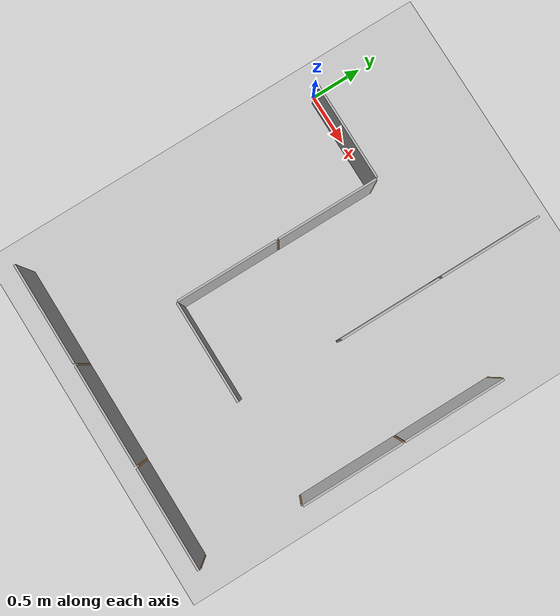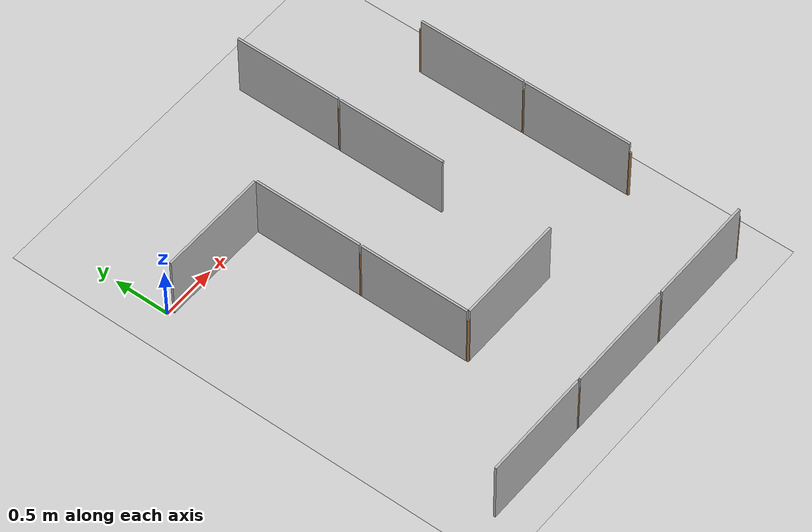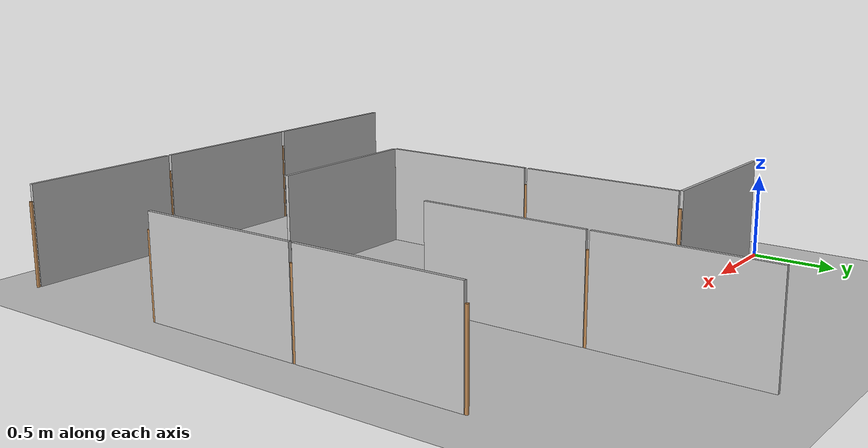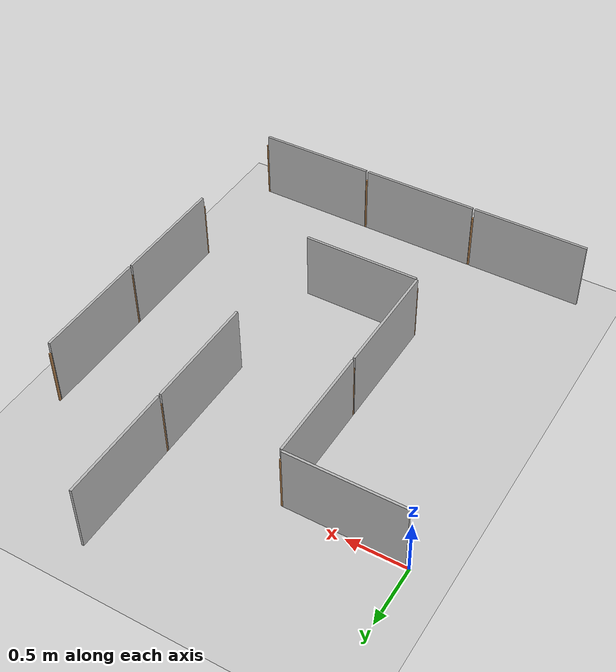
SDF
<sdf version="1.7">
 <world name="default">
  <model name="ground_plane">
   <static>1</static>
   <link name="link">
    <collision name="collision">
     <geometry><plane><normal>0 0 1</normal><size>100 100</size></plane></geometry>
     <surface><friction><ode><mu>100</mu><mu2>50</mu2></ode></friction></surface>
    </collision>
    <visual name="visual">
     <cast_shadows>0</cast_shadows>
     <geometry><plane><normal>0 0 1</normal><size>100 100</size></plane></geometry>
     <material>
      <script><uri>file://media/materials/scripts/gazebo.material</uri><name>Gazebo/Grey</name></script>
     </material>
    </visual>
   </link>
  </model>
  <model name="maze_3_6x6">
   <link name="plywood_panel_0_3_a::main">
    <pose>0 3 0 0 -0 3.14159</pose>
    <visual name="visual">
     <pose>0.01 -0.01 0 3.14159 -1.57059 3.14159</pose>
     <geometry><mesh><scale>1 1 1</scale><uri>model://plywood_panel/meshes/plywood.dae</uri></mesh></geometry>
     <material><shader type="pixel"/></material>
    </visual>
    <collision name="collision">
     <pose>0 -0.5 0.3 -1.571 -0 -1.571</pose>
     <geometry><box><size>0.98 0.6 0.02</size></box></geometry>
     <surface>
      <friction>
       <ode><mu>1</mu><mu2>1</mu2><fdir1>0 0 0</fdir1><slip1>0</slip1><slip2>0</slip2></ode>
       <torsional>
        <coefficient>1</coefficient>
        <patch_radius>0</patch_radius>
        <surface_radius>0</surface_radius>
        <use_patch_radius>1</use_patch_radius>
        <ode><slip>0</slip></ode>
       </torsional>
      </friction>
      <bounce><restitution_coefficient>0</restitution_coefficient><threshold>1e+06</threshold></bounce>
      <contact>
       <collide_without_contact>0</collide_without_contact>
       <collide_without_contact_bitmask>1</collide_without_contact_bitmask>
       <collide_bitmask>1</collide_bitmask>
       <ode>
        <soft_cfm>0</soft_cfm>
        <soft_erp>0.2</soft_erp>
        <kp>1e+13</kp>
        <kd>1</kd>
        <max_vel>0.01</max_vel>
        <min_depth>0</min_depth>
       </ode>
       <bullet>
        <split_impulse>1</split_impulse>
        <split_impulse_penetration_threshold>-0.01</split_impulse_penetration_threshold>
        <soft_cfm>0</soft_cfm>
        <soft_erp>0.2</soft_erp>
        <kp>1e+13</kp>
        <kd>1</kd>
       </bullet>
      </contact>
     </surface>
    </collision>
   </link>
   <link name="plywood_panel_0_4_a::main">
    <pose>0 4 0 0 -0 3.14159</pose>
    <visual name="visual">
     <pose>0.01 -0.01 0 3.14159 -1.57059 3.14159</pose>
     <geometry><mesh><scale>1 1 1</scale><uri>model://plywood_panel/meshes/plywood.dae</uri></mesh></geometry>
     <material><shader type="pixel"/></material>
    </visual>
    <collision name="collision">
     <pose>0 -0.5 0.3 -1.571 -0 -1.571</pose>
     <geometry><box><size>0.98 0.6 0.02</size></box></geometry>
     <surface>
      <friction>
       <ode><mu>1</mu><mu2>1</mu2><fdir1>0 0 0</fdir1><slip1>0</slip1><slip2>0</slip2></ode>
       <torsional>
        <coefficient>1</coefficient>
        <patch_radius>0</patch_radius>
        <surface_radius>0</surface_radius>
        <use_patch_radius>1</use_patch_radius>
        <ode><slip>0</slip></ode>
       </torsional>
      </friction>
      <bounce><restitution_coefficient>0</restitution_coefficient><threshold>1e+06</threshold></bounce>
      <contact>
       <collide_without_contact>0</collide_without_contact>
       <collide_without_contact_bitmask>1</collide_without_contact_bitmask>
       <collide_bitmask>1</collide_bitmask>
       <ode>
        <soft_cfm>0</soft_cfm>
        <soft_erp>0.2</soft_erp>
        <kp>1e+13</kp>
        <kd>1</kd>
        <max_vel>0.01</max_vel>
        <min_depth>0</min_depth>
       </ode>
       <bullet>
        <split_impulse>1</split_impulse>
        <split_impulse_penetration_threshold>-0.01</split_impulse_penetration_threshold>
        <soft_cfm>0</soft_cfm>
        <soft_erp>0.2</soft_erp>
        <kp>1e+13</kp>
        <kd>1</kd>
       </bullet>
      </contact>
     </surface>
    </collision>
   </link>
   <link name="plywood_panel_0_6_b::main">
    <pose>0 6 0 0 -0 1.571</pose>
    <visual name="visual">
     <pose>0.01 -0.01 0 3.14159 -1.57059 3.14159</pose>
     <geometry><mesh><scale>1 1 1</scale><uri>model://plywood_panel/meshes/plywood.dae</uri></mesh></geometry>
     <material><shader type="pixel"/></material>
    </visual>
    <collision name="collision">
     <pose>0 -0.5 0.3 -1.571 -0 -1.571</pose>
     <geometry><box><size>0.98 0.6 0.02</size></box></geometry>
     <surface>
      <friction>
       <ode><mu>1</mu><mu2>1</mu2><fdir1>0 0 0</fdir1><slip1>0</slip1><slip2>0</slip2></ode>
       <torsional>
        <coefficient>1</coefficient>
        <patch_radius>0</patch_radius>
        <surface_radius>0</surface_radius>
        <use_patch_radius>1</use_patch_radius>
        <ode><slip>0</slip></ode>
       </torsional>
      </friction>
      <bounce><restitution_coefficient>0</restitution_coefficient><threshold>1e+06</threshold></bounce>
      <contact>
       <collide_without_contact>0</collide_without_contact>
       <collide_without_contact_bitmask>1</collide_without_contact_bitmask>
       <collide_bitmask>1</collide_bitmask>
       <ode>
        <soft_cfm>0</soft_cfm>
        <soft_erp>0.2</soft_erp>
        <kp>1e+13</kp>
        <kd>1</kd>
        <max_vel>0.01</max_vel>
        <min_depth>0</min_depth>
       </ode>
       <bullet>
        <split_impulse>1</split_impulse>
        <split_impulse_penetration_threshold>-0.01</split_impulse_penetration_threshold>
        <soft_cfm>0</soft_cfm>
        <soft_erp>0.2</soft_erp>
        <kp>1e+13</kp>
        <kd>1</kd>
       </bullet>
      </contact>
     </surface>
    </collision>
   </link>
   <link name="plywood_panel_1_3_a::main">
    <pose>1 3 0 0 -0 0</pose>
    <visual name="visual">
     <pose>0.01 -0.01 0 3.14159 -1.57059 3.14159</pose>
     <geometry><mesh><scale>1 1 1</scale><uri>model://plywood_panel/meshes/plywood.dae</uri></mesh></geometry>
     <material><shader type="pixel"/></material>
    </visual>
    <collision name="collision">
     <pose>0 -0.5 0.3 -1.571 -0 -1.571</pose>
     <geometry><box><size>0.98 0.6 0.02</size></box></geometry>
     <surface>
      <friction>
       <ode><mu>1</mu><mu2>1</mu2><fdir1>0 0 0</fdir1><slip1>0</slip1><slip2>0</slip2></ode>
       <torsional>
        <coefficient>1</coefficient>
        <patch_radius>0</patch_radius>
        <surface_radius>0</surface_radius>
        <use_patch_radius>1</use_patch_radius>
        <ode><slip>0</slip></ode>
       </torsional>
      </friction>
      <bounce><restitution_coefficient>0</restitution_coefficient><threshold>1e+06</threshold></bounce>
      <contact>
       <collide_without_contact>0</collide_without_contact>
       <collide_without_contact_bitmask>1</collide_without_contact_bitmask>
       <collide_bitmask>1</collide_bitmask>
       <ode>
        <soft_cfm>0</soft_cfm>
        <soft_erp>0.2</soft_erp>
        <kp>1e+13</kp>
        <kd>1</kd>
        <max_vel>0.01</max_vel>
        <min_depth>0</min_depth>
       </ode>
       <bullet>
        <split_impulse>1</split_impulse>
        <split_impulse_penetration_threshold>-0.01</split_impulse_penetration_threshold>
        <soft_cfm>0</soft_cfm>
        <soft_erp>0.2</soft_erp>
        <kp>1e+13</kp>
        <kd>1</kd>
       </bullet>
      </contact>
     </surface>
    </collision>
   </link>
   <link name="plywood_panel_1_4_a::main">
    <pose>1 4 0 0 -0 0</pose>
    <visual name="visual">
     <pose>0.01 -0.01 0 3.14159 -1.57059 3.14159</pose>
     <geometry><mesh><scale>1 1 1</scale><uri>model://plywood_panel/meshes/plywood.dae</uri></mesh></geometry>
     <material><shader type="pixel"/></material>
    </visual>
    <collision name="collision">
     <pose>0 -0.5 0.3 -1.571 -0 -1.571</pose>
     <geometry><box><size>0.98 0.6 0.02</size></box></geometry>
     <surface>
      <friction>
       <ode><mu>1</mu><mu2>1</mu2><fdir1>0 0 0</fdir1><slip1>0</slip1><slip2>0</slip2></ode>
       <torsional>
        <coefficient>1</coefficient>
        <patch_radius>0</patch_radius>
        <surface_radius>0</surface_radius>
        <use_patch_radius>1</use_patch_radius>
        <ode><slip>0</slip></ode>
       </torsional>
      </friction>
      <bounce><restitution_coefficient>0</restitution_coefficient><threshold>1e+06</threshold></bounce>
      <contact>
       <collide_without_contact>0</collide_without_contact>
       <collide_without_contact_bitmask>1</collide_without_contact_bitmask>
       <collide_bitmask>1</collide_bitmask>
       <ode>
        <soft_cfm>0</soft_cfm>
        <soft_erp>0.2</soft_erp>
        <kp>1e+13</kp>
        <kd>1</kd>
        <max_vel>0.01</max_vel>
        <min_depth>0</min_depth>
       </ode>
       <bullet>
        <split_impulse>1</split_impulse>
        <split_impulse_penetration_threshold>-0.01</split_impulse_penetration_threshold>
        <soft_cfm>0</soft_cfm>
        <soft_erp>0.2</soft_erp>
        <kp>1e+13</kp>
        <kd>1</kd>
       </bullet>
      </contact>
     </surface>
    </collision>
   </link>
   <link name="plywood_panel_1_6_b::main">
    <pose>1 6 0 0 -0 1.571</pose>
    <visual name="visual">
     <pose>0.01 -0.01 0 3.14159 -1.57059 3.14159</pose>
     <geometry><mesh><scale>1 1 1</scale><uri>model://plywood_panel/meshes/plywood.dae</uri></mesh></geometry>
     <material><shader type="pixel"/></material>
    </visual>
    <collision name="collision">
     <pose>0 -0.5 0.3 -1.571 -0 -1.571</pose>
     <geometry><box><size>0.98 0.6 0.02</size></box></geometry>
     <surface>
      <friction>
       <ode><mu>1</mu><mu2>1</mu2><fdir1>0 0 0</fdir1><slip1>0</slip1><slip2>0</slip2></ode>
       <torsional>
        <coefficient>1</coefficient>
        <patch_radius>0</patch_radius>
        <surface_radius>0</surface_radius>
        <use_patch_radius>1</use_patch_radius>
        <ode><slip>0</slip></ode>
       </torsional>
      </friction>
      <bounce><restitution_coefficient>0</restitution_coefficient><threshold>1e+06</threshold></bounce>
      <contact>
       <collide_without_contact>0</collide_without_contact>
       <collide_without_contact_bitmask>1</collide_without_contact_bitmask>
       <collide_bitmask>1</collide_bitmask>
       <ode>
        <soft_cfm>0</soft_cfm>
        <soft_erp>0.2</soft_erp>
        <kp>1e+13</kp>
        <kd>1</kd>
        <max_vel>0.01</max_vel>
        <min_depth>0</min_depth>
       </ode>
       <bullet>
        <split_impulse>1</split_impulse>
        <split_impulse_penetration_threshold>-0.01</split_impulse_penetration_threshold>
        <soft_cfm>0</soft_cfm>
        <soft_erp>0.2</soft_erp>
        <kp>1e+13</kp>
        <kd>1</kd>
       </bullet>
      </contact>
     </surface>
    </collision>
   </link>
   <link name="plywood_panel_2_4_a::main">
    <pose>2 4 0 0 -0 0</pose>
    <visual name="visual">
     <pose>0.01 -0.01 0 3.14159 -1.57059 3.14159</pose>
     <geometry><mesh><scale>1 1 1</scale><uri>model://plywood_panel/meshes/plywood.dae</uri></mesh></geometry>
     <material><shader type="pixel"/></material>
    </visual>
    <collision name="collision">
     <pose>0 -0.5 0.3 -1.571 -0 -1.571</pose>
     <geometry><box><size>0.98 0.6 0.02</size></box></geometry>
     <surface>
      <friction>
       <ode><mu>1</mu><mu2>1</mu2><fdir1>0 0 0</fdir1><slip1>0</slip1><slip2>0</slip2></ode>
       <torsional>
        <coefficient>1</coefficient>
        <patch_radius>0</patch_radius>
        <surface_radius>0</surface_radius>
        <use_patch_radius>1</use_patch_radius>
        <ode><slip>0</slip></ode>
       </torsional>
      </friction>
      <bounce><restitution_coefficient>0</restitution_coefficient><threshold>1e+06</threshold></bounce>
      <contact>
       <collide_without_contact>0</collide_without_contact>
       <collide_without_contact_bitmask>1</collide_without_contact_bitmask>
       <collide_bitmask>1</collide_bitmask>
       <ode>
        <soft_cfm>0</soft_cfm>
        <soft_erp>0.2</soft_erp>
        <kp>1e+13</kp>
        <kd>1</kd>
        <max_vel>0.01</max_vel>
        <min_depth>0</min_depth>
       </ode>
       <bullet>
        <split_impulse>1</split_impulse>
        <split_impulse_penetration_threshold>-0.01</split_impulse_penetration_threshold>
        <soft_cfm>0</soft_cfm>
        <soft_erp>0.2</soft_erp>
        <kp>1e+13</kp>
        <kd>1</kd>
       </bullet>
      </contact>
     </surface>
    </collision>
   </link>
   <link name="plywood_panel_2_5_a::main">
    <pose>2 5 0 0 -0 0</pose>
    <visual name="visual">
     <pose>0.01 -0.01 0 3.14159 -1.57059 3.14159</pose>
     <geometry><mesh><scale>1 1 1</scale><uri>model://plywood_panel/meshes/plywood.dae</uri></mesh></geometry>
     <material><shader type="pixel"/></material>
    </visual>
    <collision name="collision">
     <pose>0 -0.5 0.3 -1.571 -0 -1.571</pose>
     <geometry><box><size>0.98 0.6 0.02</size></box></geometry>
     <surface>
      <friction>
       <ode><mu>1</mu><mu2>1</mu2><fdir1>0 0 0</fdir1><slip1>0</slip1><slip2>0</slip2></ode>
       <torsional>
        <coefficient>1</coefficient>
        <patch_radius>0</patch_radius>
        <surface_radius>0</surface_radius>
        <use_patch_radius>1</use_patch_radius>
        <ode><slip>0</slip></ode>
       </torsional>
      </friction>
      <bounce><restitution_coefficient>0</restitution_coefficient><threshold>1e+06</threshold></bounce>
      <contact>
       <collide_without_contact>0</collide_without_contact>
       <collide_without_contact_bitmask>1</collide_without_contact_bitmask>
       <collide_bitmask>1</collide_bitmask>
       <ode>
        <soft_cfm>0</soft_cfm>
        <soft_erp>0.2</soft_erp>
        <kp>1e+13</kp>
        <kd>1</kd>
        <max_vel>0.01</max_vel>
        <min_depth>0</min_depth>
       </ode>
       <bullet>
        <split_impulse>1</split_impulse>
        <split_impulse_penetration_threshold>-0.01</split_impulse_penetration_threshold>
        <soft_cfm>0</soft_cfm>
        <soft_erp>0.2</soft_erp>
        <kp>1e+13</kp>
        <kd>1</kd>
       </bullet>
      </contact>
     </surface>
    </collision>
   </link>
   <link name="plywood_panel_2_5_c::main">
    <pose>2 5 0 0 0 -1.5708</pose>
    <visual name="visual">
     <pose>0.01 -0.01 0 3.14159 -1.57059 3.14159</pose>
     <geometry><mesh><scale>1 1 1</scale><uri>model://plywood_panel/meshes/plywood.dae</uri></mesh></geometry>
     <material><shader type="pixel"/></material>
    </visual>
    <collision name="collision">
     <pose>0 -0.5 0.3 -1.571 -0 -1.571</pose>
     <geometry><box><size>0.98 0.6 0.02</size></box></geometry>
     <surface>
      <friction>
       <ode><mu>1</mu><mu2>1</mu2><fdir1>0 0 0</fdir1><slip1>0</slip1><slip2>0</slip2></ode>
       <torsional>
        <coefficient>1</coefficient>
        <patch_radius>0</patch_radius>
        <surface_radius>0</surface_radius>
        <use_patch_radius>1</use_patch_radius>
        <ode><slip>0</slip></ode>
       </torsional>
      </friction>
      <bounce><restitution_coefficient>0</restitution_coefficient><threshold>1e+06</threshold></bounce>
      <contact>
       <collide_without_contact>0</collide_without_contact>
       <collide_without_contact_bitmask>1</collide_without_contact_bitmask>
       <collide_bitmask>1</collide_bitmask>
       <ode>
        <soft_cfm>0</soft_cfm>
        <soft_erp>0.2</soft_erp>
        <kp>1e+13</kp>
        <kd>1</kd>
        <max_vel>0.01</max_vel>
        <min_depth>0</min_depth>
       </ode>
       <bullet>
        <split_impulse>1</split_impulse>
        <split_impulse_penetration_threshold>-0.01</split_impulse_penetration_threshold>
        <soft_cfm>0</soft_cfm>
        <soft_erp>0.2</soft_erp>
        <kp>1e+13</kp>
        <kd>1</kd>
       </bullet>
      </contact>
     </surface>
    </collision>
   </link>
   <link name="plywood_panel_2_6_b::main">
    <pose>2 6 0 0 -0 1.571</pose>
    <visual name="visual">
     <pose>0.01 -0.01 0 3.14159 -1.57059 3.14159</pose>
     <geometry><mesh><scale>1 1 1</scale><uri>model://plywood_panel/meshes/plywood.dae</uri></mesh></geometry>
     <material><shader type="pixel"/></material>
    </visual>
    <collision name="collision">
     <pose>0 -0.5 0.3 -1.571 -0 -1.571</pose>
     <geometry><box><size>0.98 0.6 0.02</size></box></geometry>
     <surface>
      <friction>
       <ode><mu>1</mu><mu2>1</mu2><fdir1>0 0 0</fdir1><slip1>0</slip1><slip2>0</slip2></ode>
       <torsional>
        <coefficient>1</coefficient>
        <patch_radius>0</patch_radius>
        <surface_radius>0</surface_radius>
        <use_patch_radius>1</use_patch_radius>
        <ode><slip>0</slip></ode>
       </torsional>
      </friction>
      <bounce><restitution_coefficient>0</restitution_coefficient><threshold>1e+06</threshold></bounce>
      <contact>
       <collide_without_contact>0</collide_without_contact>
       <collide_without_contact_bitmask>1</collide_without_contact_bitmask>
       <collide_bitmask>1</collide_bitmask>
       <ode>
        <soft_cfm>0</soft_cfm>
        <soft_erp>0.2</soft_erp>
        <kp>1e+13</kp>
        <kd>1</kd>
        <max_vel>0.01</max_vel>
        <min_depth>0</min_depth>
       </ode>
       <bullet>
        <split_impulse>1</split_impulse>
        <split_impulse_penetration_threshold>-0.01</split_impulse_penetration_threshold>
        <soft_cfm>0</soft_cfm>
        <soft_erp>0.2</soft_erp>
        <kp>1e+13</kp>
        <kd>1</kd>
       </bullet>
      </contact>
     </surface>
    </collision>
   </link>
   <link name="plywood_panel_3_3_c::main">
    <pose>3 3 0 0 0 -1.5708</pose>
    <visual name="visual">
     <pose>0.01 -0.01 0 3.14159 -1.57059 3.14159</pose>
     <geometry><mesh><scale>1 1 1</scale><uri>model://plywood_panel/meshes/plywood.dae</uri></mesh></geometry>
     <material><shader type="pixel"/></material>
    </visual>
    <collision name="collision">
     <pose>0 -0.5 0.3 -1.571 -0 -1.571</pose>
     <geometry><box><size>0.98 0.6 0.02</size></box></geometry>
     <surface>
      <friction>
       <ode><mu>1</mu><mu2>1</mu2><fdir1>0 0 0</fdir1><slip1>0</slip1><slip2>0</slip2></ode>
       <torsional>
        <coefficient>1</coefficient>
        <patch_radius>0</patch_radius>
        <surface_radius>0</surface_radius>
        <use_patch_radius>1</use_patch_radius>
        <ode><slip>0</slip></ode>
       </torsional>
      </friction>
      <bounce><restitution_coefficient>0</restitution_coefficient><threshold>1e+06</threshold></bounce>
      <contact>
       <collide_without_contact>0</collide_without_contact>
       <collide_without_contact_bitmask>1</collide_without_contact_bitmask>
       <collide_bitmask>1</collide_bitmask>
       <ode>
        <soft_cfm>0</soft_cfm>
        <soft_erp>0.2</soft_erp>
        <kp>1e+13</kp>
        <kd>1</kd>
        <max_vel>0.01</max_vel>
        <min_depth>0</min_depth>
       </ode>
       <bullet>
        <split_impulse>1</split_impulse>
        <split_impulse_penetration_threshold>-0.01</split_impulse_penetration_threshold>
        <soft_cfm>0</soft_cfm>
        <soft_erp>0.2</soft_erp>
        <kp>1e+13</kp>
        <kd>1</kd>
       </bullet>
      </contact>
     </surface>
    </collision>
   </link>
   <link name="wooden_joint_0_3_a::link_0">
    <pose>0 3 0.25 0 -0 0</pose>
    <inertial>
     <mass>0.00215981</mass>
     <inertia>
      <ixx>0.00018028</ixx>
      <ixy>0</ixy>
      <ixz>0</ixz>
      <iyy>0.00018028</iyy>
      <iyz>0</iyz>
      <izz>5.8e-07</izz>
     </inertia>
    </inertial>
    <visual name="visual">
     <geometry><cylinder><radius>0.01</radius><length>0.5</length></cylinder></geometry>
     <material>
      <lighting>1</lighting>
      <script><uri>file://media/materials/scripts/gazebo.material</uri><name>Gazebo/Wood</name></script>
      <shader type="pixel"><normal_map>__default__</normal_map></shader>
      <ambient>0.3 0.3 0.3 1</ambient>
      <diffuse>0.7 0.7 0.7 1</diffuse>
      <specular>0.01 0.01 0.01 1</specular>
      <emissive>0 0 0 1</emissive>
     </material>
    </visual>
    <collision name="collision">
     <geometry><cylinder><radius>0.01</radius><length>0.5</length></cylinder></geometry>
     <surface>
      <friction>
       <ode><mu>1</mu><mu2>1</mu2><fdir1>0 0 0</fdir1><slip1>0</slip1><slip2>0</slip2></ode>
       <torsional>
        <coefficient>1</coefficient>
        <patch_radius>0</patch_radius>
        <surface_radius>0</surface_radius>
        <use_patch_radius>1</use_patch_radius>
        <ode><slip>0</slip></ode>
       </torsional>
      </friction>
      <bounce><restitution_coefficient>0</restitution_coefficient><threshold>1e+06</threshold></bounce>
      <contact>
       <collide_without_contact>0</collide_without_contact>
       <collide_without_contact_bitmask>1</collide_without_contact_bitmask>
       <collide_bitmask>1</collide_bitmask>
       <ode>
        <soft_cfm>0</soft_cfm>
        <soft_erp>0.2</soft_erp>
        <kp>1e+13</kp>
        <kd>1</kd>
        <max_vel>0.01</max_vel>
        <min_depth>0</min_depth>
       </ode>
       <bullet>
        <split_impulse>1</split_impulse>
        <split_impulse_penetration_threshold>-0.01</split_impulse_penetration_threshold>
        <soft_cfm>0</soft_cfm>
        <soft_erp>0.2</soft_erp>
        <kp>1e+13</kp>
        <kd>1</kd>
       </bullet>
      </contact>
     </surface>
    </collision>
   </link>
   <link name="wooden_joint_0_4_a::link_0">
    <pose>0 4 0.25 0 -0 0</pose>
    <inertial>
     <mass>0.00215981</mass>
     <inertia>
      <ixx>0.00018028</ixx>
      <ixy>0</ixy>
      <ixz>0</ixz>
      <iyy>0.00018028</iyy>
      <iyz>0</iyz>
      <izz>5.8e-07</izz>
     </inertia>
    </inertial>
    <visual name="visual">
     <geometry><cylinder><radius>0.01</radius><length>0.5</length></cylinder></geometry>
     <material>
      <lighting>1</lighting>
      <script><uri>file://media/materials/scripts/gazebo.material</uri><name>Gazebo/Wood</name></script>
      <shader type="pixel"><normal_map>__default__</normal_map></shader>
      <ambient>0.3 0.3 0.3 1</ambient>
      <diffuse>0.7 0.7 0.7 1</diffuse>
      <specular>0.01 0.01 0.01 1</specular>
      <emissive>0 0 0 1</emissive>
     </material>
    </visual>
    <collision name="collision">
     <geometry><cylinder><radius>0.01</radius><length>0.5</length></cylinder></geometry>
     <surface>
      <friction>
       <ode><mu>1</mu><mu2>1</mu2><fdir1>0 0 0</fdir1><slip1>0</slip1><slip2>0</slip2></ode>
       <torsional>
        <coefficient>1</coefficient>
        <patch_radius>0</patch_radius>
        <surface_radius>0</surface_radius>
        <use_patch_radius>1</use_patch_radius>
        <ode><slip>0</slip></ode>
       </torsional>
      </friction>
      <bounce><restitution_coefficient>0</restitution_coefficient><threshold>1e+06</threshold></bounce>
      <contact>
       <collide_without_contact>0</collide_without_contact>
       <collide_without_contact_bitmask>1</collide_without_contact_bitmask>
       <collide_bitmask>1</collide_bitmask>
       <ode>
        <soft_cfm>0</soft_cfm>
        <soft_erp>0.2</soft_erp>
        <kp>1e+13</kp>
        <kd>1</kd>
        <max_vel>0.01</max_vel>
        <min_depth>0</min_depth>
       </ode>
       <bullet>
        <split_impulse>1</split_impulse>
        <split_impulse_penetration_threshold>-0.01</split_impulse_penetration_threshold>
        <soft_cfm>0</soft_cfm>
        <soft_erp>0.2</soft_erp>
        <kp>1e+13</kp>
        <kd>1</kd>
       </bullet>
      </contact>
     </surface>
    </collision>
   </link>
   <link name="wooden_joint_0_5_a::link_0">
    <pose>0 5 0.25 0 -0 0</pose>
    <inertial>
     <mass>0.00215981</mass>
     <inertia>
      <ixx>0.00018028</ixx>
      <ixy>0</ixy>
      <ixz>0</ixz>
      <iyy>0.00018028</iyy>
      <iyz>0</iyz>
      <izz>5.8e-07</izz>
     </inertia>
    </inertial>
    <visual name="visual">
     <geometry><cylinder><radius>0.01</radius><length>0.5</length></cylinder></geometry>
     <material>
      <lighting>1</lighting>
      <script><uri>file://media/materials/scripts/gazebo.material</uri><name>Gazebo/Wood</name></script>
      <shader type="pixel"><normal_map>__default__</normal_map></shader>
      <ambient>0.3 0.3 0.3 1</ambient>
      <diffuse>0.7 0.7 0.7 1</diffuse>
      <specular>0.01 0.01 0.01 1</specular>
      <emissive>0 0 0 1</emissive>
     </material>
    </visual>
    <collision name="collision">
     <geometry><cylinder><radius>0.01</radius><length>0.5</length></cylinder></geometry>
     <surface>
      <friction>
       <ode><mu>1</mu><mu2>1</mu2><fdir1>0 0 0</fdir1><slip1>0</slip1><slip2>0</slip2></ode>
       <torsional>
        <coefficient>1</coefficient>
        <patch_radius>0</patch_radius>
        <surface_radius>0</surface_radius>
        <use_patch_radius>1</use_patch_radius>
        <ode><slip>0</slip></ode>
       </torsional>
      </friction>
      <bounce><restitution_coefficient>0</restitution_coefficient><threshold>1e+06</threshold></bounce>
      <contact>
       <collide_without_contact>0</collide_without_contact>
       <collide_without_contact_bitmask>1</collide_without_contact_bitmask>
       <collide_bitmask>1</collide_bitmask>
       <ode>
        <soft_cfm>0</soft_cfm>
        <soft_erp>0.2</soft_erp>
        <kp>1e+13</kp>
        <kd>1</kd>
        <max_vel>0.01</max_vel>
        <min_depth>0</min_depth>
       </ode>
       <bullet>
        <split_impulse>1</split_impulse>
        <split_impulse_penetration_threshold>-0.01</split_impulse_penetration_threshold>
        <soft_cfm>0</soft_cfm>
        <soft_erp>0.2</soft_erp>
        <kp>1e+13</kp>
        <kd>1</kd>
       </bullet>
      </contact>
     </surface>
    </collision>
   </link>
   <link name="wooden_joint_0_6_b::link_0">
    <pose>0 6 0.25 0 -0 0</pose>
    <inertial>
     <mass>0.00215981</mass>
     <inertia>
      <ixx>0.00018028</ixx>
      <ixy>0</ixy>
      <ixz>0</ixz>
      <iyy>0.00018028</iyy>
      <iyz>0</iyz>
      <izz>5.8e-07</izz>
     </inertia>
    </inertial>
    <visual name="visual">
     <geometry><cylinder><radius>0.01</radius><length>0.5</length></cylinder></geometry>
     <material>
      <lighting>1</lighting>
      <script><uri>file://media/materials/scripts/gazebo.material</uri><name>Gazebo/Wood</name></script>
      <shader type="pixel"><normal_map>__default__</normal_map></shader>
      <ambient>0.3 0.3 0.3 1</ambient>
      <diffuse>0.7 0.7 0.7 1</diffuse>
      <specular>0.01 0.01 0.01 1</specular>
      <emissive>0 0 0 1</emissive>
     </material>
    </visual>
    <collision name="collision">
     <geometry><cylinder><radius>0.01</radius><length>0.5</length></cylinder></geometry>
     <surface>
      <friction>
       <ode><mu>1</mu><mu2>1</mu2><fdir1>0 0 0</fdir1><slip1>0</slip1><slip2>0</slip2></ode>
       <torsional>
        <coefficient>1</coefficient>
        <patch_radius>0</patch_radius>
        <surface_radius>0</surface_radius>
        <use_patch_radius>1</use_patch_radius>
        <ode><slip>0</slip></ode>
       </torsional>
      </friction>
      <bounce><restitution_coefficient>0</restitution_coefficient><threshold>1e+06</threshold></bounce>
      <contact>
       <collide_without_contact>0</collide_without_contact>
       <collide_without_contact_bitmask>1</collide_without_contact_bitmask>
       <collide_bitmask>1</collide_bitmask>
       <ode>
        <soft_cfm>0</soft_cfm>
        <soft_erp>0.2</soft_erp>
        <kp>1e+13</kp>
        <kd>1</kd>
        <max_vel>0.01</max_vel>
        <min_depth>0</min_depth>
       </ode>
       <bullet>
        <split_impulse>1</split_impulse>
        <split_impulse_penetration_threshold>-0.01</split_impulse_penetration_threshold>
        <soft_cfm>0</soft_cfm>
        <soft_erp>0.2</soft_erp>
        <kp>1e+13</kp>
        <kd>1</kd>
       </bullet>
      </contact>
     </surface>
    </collision>
   </link>
   <link name="wooden_joint_1_3::link_0">
    <pose>1 3 0.25 0 -0 0</pose>
    <inertial>
     <mass>0.00215981</mass>
     <inertia>
      <ixx>0.00018028</ixx>
      <ixy>0</ixy>
      <ixz>0</ixz>
      <iyy>0.00018028</iyy>
      <iyz>0</iyz>
      <izz>5.8e-07</izz>
     </inertia>
    </inertial>
    <visual name="visual">
     <geometry><cylinder><radius>0.01</radius><length>0.5</length></cylinder></geometry>
     <material>
      <lighting>1</lighting>
      <script><uri>file://media/materials/scripts/gazebo.material</uri><name>Gazebo/Wood</name></script>
      <shader type="pixel"><normal_map>__default__</normal_map></shader>
      <ambient>0.3 0.3 0.3 1</ambient>
      <diffuse>0.7 0.7 0.7 1</diffuse>
      <specular>0.01 0.01 0.01 1</specular>
      <emissive>0 0 0 1</emissive>
     </material>
    </visual>
    <collision name="collision">
     <geometry><cylinder><radius>0.01</radius><length>0.5</length></cylinder></geometry>
     <surface>
      <friction>
       <ode><mu>1</mu><mu2>1</mu2><fdir1>0 0 0</fdir1><slip1>0</slip1><slip2>0</slip2></ode>
       <torsional>
        <coefficient>1</coefficient>
        <patch_radius>0</patch_radius>
        <surface_radius>0</surface_radius>
        <use_patch_radius>1</use_patch_radius>
        <ode><slip>0</slip></ode>
       </torsional>
      </friction>
      <bounce><restitution_coefficient>0</restitution_coefficient><threshold>1e+06</threshold></bounce>
      <contact>
       <collide_without_contact>0</collide_without_contact>
       <collide_without_contact_bitmask>1</collide_without_contact_bitmask>
       <collide_bitmask>1</collide_bitmask>
       <ode>
        <soft_cfm>0</soft_cfm>
        <soft_erp>0.2</soft_erp>
        <kp>1e+13</kp>
        <kd>1</kd>
        <max_vel>0.01</max_vel>
        <min_depth>0</min_depth>
       </ode>
       <bullet>
        <split_impulse>1</split_impulse>
        <split_impulse_penetration_threshold>-0.01</split_impulse_penetration_threshold>
        <soft_cfm>0</soft_cfm>
        <soft_erp>0.2</soft_erp>
        <kp>1e+13</kp>
        <kd>1</kd>
       </bullet>
      </contact>
     </surface>
    </collision>
   </link>
   <link name="wooden_joint_1_6_b::link_0">
    <pose>1 6 0.25 0 -0 0</pose>
    <inertial>
     <mass>0.00215981</mass>
     <inertia>
      <ixx>0.00018028</ixx>
      <ixy>0</ixy>
      <ixz>0</ixz>
      <iyy>0.00018028</iyy>
      <iyz>0</iyz>
      <izz>5.8e-07</izz>
     </inertia>
    </inertial>
    <visual name="visual">
     <geometry><cylinder><radius>0.01</radius><length>0.5</length></cylinder></geometry>
     <material>
      <lighting>1</lighting>
      <script><uri>file://media/materials/scripts/gazebo.material</uri><name>Gazebo/Wood</name></script>
      <shader type="pixel"><normal_map>__default__</normal_map></shader>
      <ambient>0.3 0.3 0.3 1</ambient>
      <diffuse>0.7 0.7 0.7 1</diffuse>
      <specular>0.01 0.01 0.01 1</specular>
      <emissive>0 0 0 1</emissive>
     </material>
    </visual>
    <collision name="collision">
     <geometry><cylinder><radius>0.01</radius><length>0.5</length></cylinder></geometry>
     <surface>
      <friction>
       <ode><mu>1</mu><mu2>1</mu2><fdir1>0 0 0</fdir1><slip1>0</slip1><slip2>0</slip2></ode>
       <torsional>
        <coefficient>1</coefficient>
        <patch_radius>0</patch_radius>
        <surface_radius>0</surface_radius>
        <use_patch_radius>1</use_patch_radius>
        <ode><slip>0</slip></ode>
       </torsional>
      </friction>
      <bounce><restitution_coefficient>0</restitution_coefficient><threshold>1e+06</threshold></bounce>
      <contact>
       <collide_without_contact>0</collide_without_contact>
       <collide_without_contact_bitmask>1</collide_without_contact_bitmask>
       <collide_bitmask>1</collide_bitmask>
       <ode>
        <soft_cfm>0</soft_cfm>
        <soft_erp>0.2</soft_erp>
        <kp>1e+13</kp>
        <kd>1</kd>
        <max_vel>0.01</max_vel>
        <min_depth>0</min_depth>
       </ode>
       <bullet>
        <split_impulse>1</split_impulse>
        <split_impulse_penetration_threshold>-0.01</split_impulse_penetration_threshold>
        <soft_cfm>0</soft_cfm>
        <soft_erp>0.2</soft_erp>
        <kp>1e+13</kp>
        <kd>1</kd>
       </bullet>
      </contact>
     </surface>
    </collision>
   </link>
   <link name="wooden_joint_2_3::link_0">
    <pose>2 3 0.25 0 -0 0</pose>
    <inertial>
     <mass>0.00215981</mass>
     <inertia>
      <ixx>0.00018028</ixx>
      <ixy>0</ixy>
      <ixz>0</ixz>
      <iyy>0.00018028</iyy>
      <iyz>0</iyz>
      <izz>5.8e-07</izz>
     </inertia>
    </inertial>
    <visual name="visual">
     <geometry><cylinder><radius>0.01</radius><length>0.5</length></cylinder></geometry>
     <material>
      <lighting>1</lighting>
      <script><uri>file://media/materials/scripts/gazebo.material</uri><name>Gazebo/Wood</name></script>
      <shader type="pixel"><normal_map>__default__</normal_map></shader>
      <ambient>0.3 0.3 0.3 1</ambient>
      <diffuse>0.7 0.7 0.7 1</diffuse>
      <specular>0.01 0.01 0.01 1</specular>
      <emissive>0 0 0 1</emissive>
     </material>
    </visual>
    <collision name="collision">
     <geometry><cylinder><radius>0.01</radius><length>0.5</length></cylinder></geometry>
     <surface>
      <friction>
       <ode><mu>1</mu><mu2>1</mu2><fdir1>0 0 0</fdir1><slip1>0</slip1><slip2>0</slip2></ode>
       <torsional>
        <coefficient>1</coefficient>
        <patch_radius>0</patch_radius>
        <surface_radius>0</surface_radius>
        <use_patch_radius>1</use_patch_radius>
        <ode><slip>0</slip></ode>
       </torsional>
      </friction>
      <bounce><restitution_coefficient>0</restitution_coefficient><threshold>1e+06</threshold></bounce>
      <contact>
       <collide_without_contact>0</collide_without_contact>
       <collide_without_contact_bitmask>1</collide_without_contact_bitmask>
       <collide_bitmask>1</collide_bitmask>
       <ode>
        <soft_cfm>0</soft_cfm>
        <soft_erp>0.2</soft_erp>
        <kp>1e+13</kp>
        <kd>1</kd>
        <max_vel>0.01</max_vel>
        <min_depth>0</min_depth>
       </ode>
       <bullet>
        <split_impulse>1</split_impulse>
        <split_impulse_penetration_threshold>-0.01</split_impulse_penetration_threshold>
        <soft_cfm>0</soft_cfm>
        <soft_erp>0.2</soft_erp>
        <kp>1e+13</kp>
        <kd>1</kd>
       </bullet>
      </contact>
     </surface>
    </collision>
   </link>
   <link name="wooden_joint_2_4::link_0">
    <pose>2 4 0.25 0 -0 0</pose>
    <inertial>
     <mass>0.00215981</mass>
     <inertia>
      <ixx>0.00018028</ixx>
      <ixy>0</ixy>
      <ixz>0</ixz>
      <iyy>0.00018028</iyy>
      <iyz>0</iyz>
      <izz>5.8e-07</izz>
     </inertia>
    </inertial>
    <visual name="visual">
     <geometry><cylinder><radius>0.01</radius><length>0.5</length></cylinder></geometry>
     <material>
      <lighting>1</lighting>
      <script><uri>file://media/materials/scripts/gazebo.material</uri><name>Gazebo/Wood</name></script>
      <shader type="pixel"><normal_map>__default__</normal_map></shader>
      <ambient>0.3 0.3 0.3 1</ambient>
      <diffuse>0.7 0.7 0.7 1</diffuse>
      <specular>0.01 0.01 0.01 1</specular>
      <emissive>0 0 0 1</emissive>
     </material>
    </visual>
    <collision name="collision">
     <geometry><cylinder><radius>0.01</radius><length>0.5</length></cylinder></geometry>
     <surface>
      <friction>
       <ode><mu>1</mu><mu2>1</mu2><fdir1>0 0 0</fdir1><slip1>0</slip1><slip2>0</slip2></ode>
       <torsional>
        <coefficient>1</coefficient>
        <patch_radius>0</patch_radius>
        <surface_radius>0</surface_radius>
        <use_patch_radius>1</use_patch_radius>
        <ode><slip>0</slip></ode>
       </torsional>
      </friction>
      <bounce><restitution_coefficient>0</restitution_coefficient><threshold>1e+06</threshold></bounce>
      <contact>
       <collide_without_contact>0</collide_without_contact>
       <collide_without_contact_bitmask>1</collide_without_contact_bitmask>
       <collide_bitmask>1</collide_bitmask>
       <ode>
        <soft_cfm>0</soft_cfm>
        <soft_erp>0.2</soft_erp>
        <kp>1e+13</kp>
        <kd>1</kd>
        <max_vel>0.01</max_vel>
        <min_depth>0</min_depth>
       </ode>
       <bullet>
        <split_impulse>1</split_impulse>
        <split_impulse_penetration_threshold>-0.01</split_impulse_penetration_threshold>
        <soft_cfm>0</soft_cfm>
        <soft_erp>0.2</soft_erp>
        <kp>1e+13</kp>
        <kd>1</kd>
       </bullet>
      </contact>
     </surface>
    </collision>
   </link>
   <link name="wooden_joint_2_5::link_0">
    <pose>2 5 0.25 0 -0 0</pose>
    <inertial>
     <mass>0.00215981</mass>
     <inertia>
      <ixx>0.00018028</ixx>
      <ixy>0</ixy>
      <ixz>0</ixz>
      <iyy>0.00018028</iyy>
      <iyz>0</iyz>
      <izz>5.8e-07</izz>
     </inertia>
    </inertial>
    <visual name="visual">
     <geometry><cylinder><radius>0.01</radius><length>0.5</length></cylinder></geometry>
     <material>
      <lighting>1</lighting>
      <script><uri>file://media/materials/scripts/gazebo.material</uri><name>Gazebo/Wood</name></script>
      <shader type="pixel"><normal_map>__default__</normal_map></shader>
      <ambient>0.3 0.3 0.3 1</ambient>
      <diffuse>0.7 0.7 0.7 1</diffuse>
      <specular>0.01 0.01 0.01 1</specular>
      <emissive>0 0 0 1</emissive>
     </material>
    </visual>
    <collision name="collision">
     <geometry><cylinder><radius>0.01</radius><length>0.5</length></cylinder></geometry>
     <surface>
      <friction>
       <ode><mu>1</mu><mu2>1</mu2><fdir1>0 0 0</fdir1><slip1>0</slip1><slip2>0</slip2></ode>
       <torsional>
        <coefficient>1</coefficient>
        <patch_radius>0</patch_radius>
        <surface_radius>0</surface_radius>
        <use_patch_radius>1</use_patch_radius>
        <ode><slip>0</slip></ode>
       </torsional>
      </friction>
      <bounce><restitution_coefficient>0</restitution_coefficient><threshold>1e+06</threshold></bounce>
      <contact>
       <collide_without_contact>0</collide_without_contact>
       <collide_without_contact_bitmask>1</collide_without_contact_bitmask>
       <collide_bitmask>1</collide_bitmask>
       <ode>
        <soft_cfm>0</soft_cfm>
        <soft_erp>0.2</soft_erp>
        <kp>1e+13</kp>
        <kd>1</kd>
        <max_vel>0.01</max_vel>
        <min_depth>0</min_depth>
       </ode>
       <bullet>
        <split_impulse>1</split_impulse>
        <split_impulse_penetration_threshold>-0.01</split_impulse_penetration_threshold>
        <soft_cfm>0</soft_cfm>
        <soft_erp>0.2</soft_erp>
        <kp>1e+13</kp>
        <kd>1</kd>
       </bullet>
      </contact>
     </surface>
    </collision>
   </link>
   <link name="wooden_joint_2_6_b::link_0">
    <pose>2 6 0.25 0 -0 0</pose>
    <inertial>
     <mass>0.00215981</mass>
     <inertia>
      <ixx>0.00018028</ixx>
      <ixy>0</ixy>
      <ixz>0</ixz>
      <iyy>0.00018028</iyy>
      <iyz>0</iyz>
      <izz>5.8e-07</izz>
     </inertia>
    </inertial>
    <visual name="visual">
     <geometry><cylinder><radius>0.01</radius><length>0.5</length></cylinder></geometry>
     <material>
      <lighting>1</lighting>
      <script><uri>file://media/materials/scripts/gazebo.material</uri><name>Gazebo/Wood</name></script>
      <shader type="pixel"><normal_map>__default__</normal_map></shader>
      <ambient>0.3 0.3 0.3 1</ambient>
      <diffuse>0.7 0.7 0.7 1</diffuse>
      <specular>0.01 0.01 0.01 1</specular>
      <emissive>0 0 0 1</emissive>
     </material>
    </visual>
    <collision name="collision">
     <geometry><cylinder><radius>0.01</radius><length>0.5</length></cylinder></geometry>
     <surface>
      <friction>
       <ode><mu>1</mu><mu2>1</mu2><fdir1>0 0 0</fdir1><slip1>0</slip1><slip2>0</slip2></ode>
       <torsional>
        <coefficient>1</coefficient>
        <patch_radius>0</patch_radius>
        <surface_radius>0</surface_radius>
        <use_patch_radius>1</use_patch_radius>
        <ode><slip>0</slip></ode>
       </torsional>
      </friction>
      <bounce><restitution_coefficient>0</restitution_coefficient><threshold>1e+06</threshold></bounce>
      <contact>
       <collide_without_contact>0</collide_without_contact>
       <collide_without_contact_bitmask>1</collide_without_contact_bitmask>
       <collide_bitmask>1</collide_bitmask>
       <ode>
        <soft_cfm>0</soft_cfm>
        <soft_erp>0.2</soft_erp>
        <kp>1e+13</kp>
        <kd>1</kd>
        <max_vel>0.01</max_vel>
        <min_depth>0</min_depth>
       </ode>
       <bullet>
        <split_impulse>1</split_impulse>
        <split_impulse_penetration_threshold>-0.01</split_impulse_penetration_threshold>
        <soft_cfm>0</soft_cfm>
        <soft_erp>0.2</soft_erp>
        <kp>1e+13</kp>
        <kd>1</kd>
       </bullet>
      </contact>
     </surface>
    </collision>
   </link>
   <static>1</static>
   <pose>3.03372 2.96274 0 0 -0 3.13962</pose>
  </model>
 </world>
</sdf>
